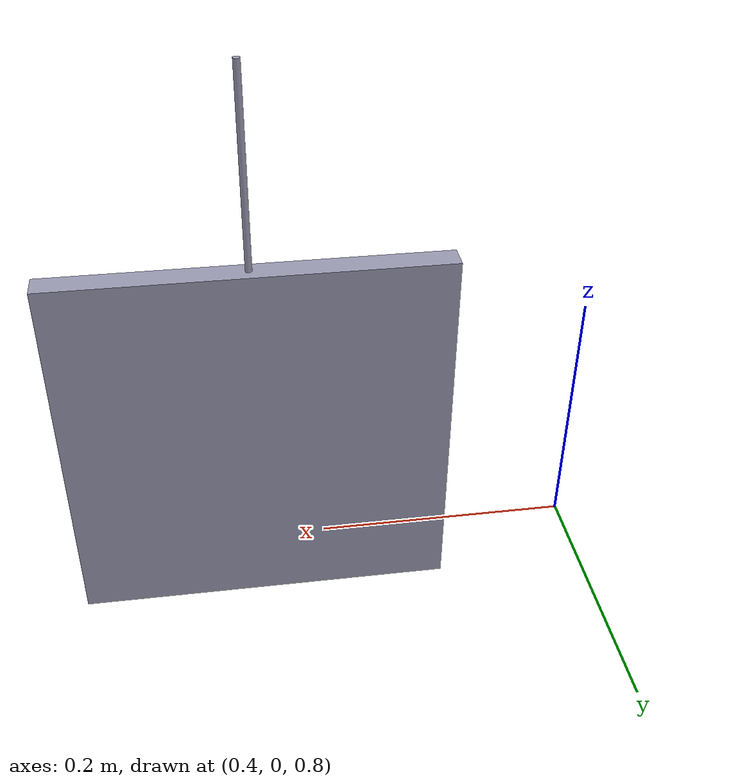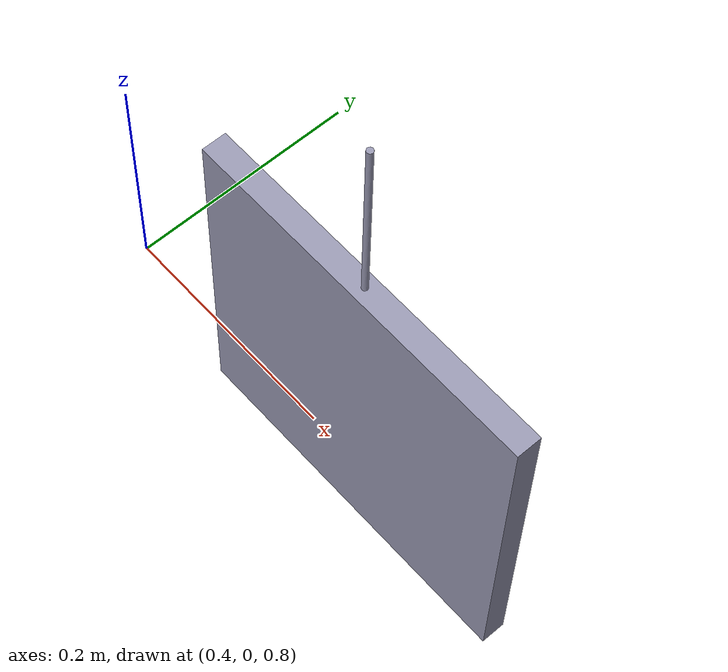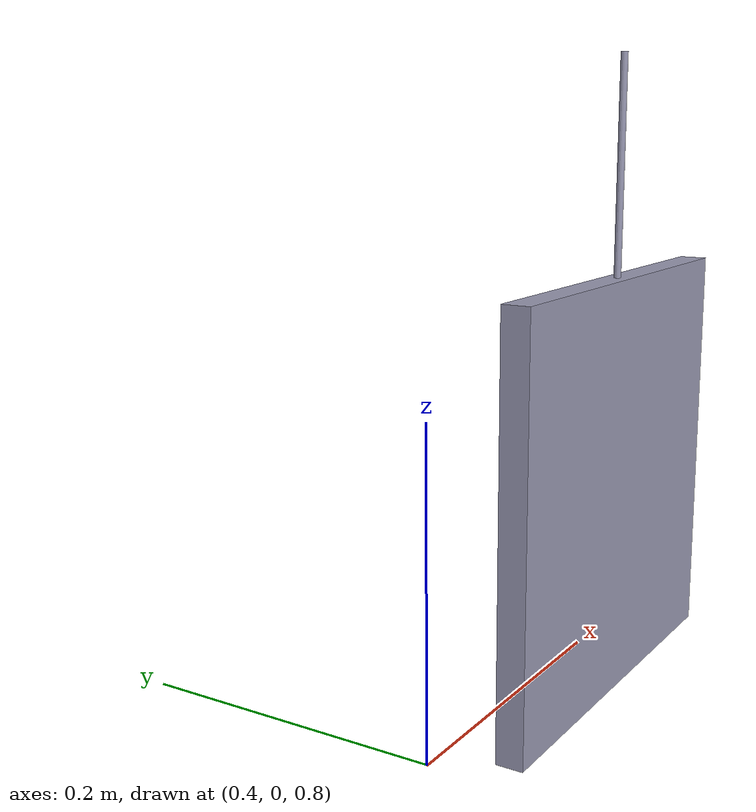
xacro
<?xml version="1.0"?>
<robot name="spray_object" xmlns:xacro="http://ros.org/wiki/xacro">
  <xacro:include filename="$(find cr5_spray_sim)/urdf/hanging_object.xacro"/>
  <xacro:arg name="object_type" default="flat_panel"/>
  <xacro:arg name="object_yaw_deg" default="0"/>
  <link name="world"/>
  <xacro:hanging_object parent_link="world"
    object_type="$(arg object_type)"
    yaw_deg="$(arg object_yaw_deg)"/>
</robot>

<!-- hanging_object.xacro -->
<!--
  Hanging Object Xacro
  吊挂工件：固定吊点 + 可控 yaw_joint + object_frame
  支持 flat_panel, cylinder_part, asymmetric_part 三种工件。
-->
<robot xmlns:xacro="http://ros.org/wiki/xacro">

  <xacro:macro name="hanging_object" params="
      parent_link:=world
      object_type:=flat_panel
      object_name:=spray_object
      x:=0.65 y:=0.0 z:=0.9
      yaw_deg:=0
      wire_length:=0.3
      wire_diameter:=0.005
  ">
    <xacro:property name="yaw_rad" value="${yaw_deg * 3.1415926535897931 / 180.0}"/>

    <material name="${object_name}_color">
      <color rgba="0.6 0.6 0.7 1"/>
    </material>

    <!-- Hanging point at gantry crossbeam -->
    <link name="${object_name}_hanging_point"/>
    <joint name="${object_name}_hanging_joint" type="fixed">
      <parent link="${parent_link}"/>
      <child link="${object_name}_hanging_point"/>
      <origin xyz="${x} ${y} ${z + wire_length}" rpy="0 0 0"/>
    </joint>

    <!-- Wire (visual only) -->
    <link name="${object_name}_wire">
      <visual>
        <origin xyz="0 0 ${-wire_length/2}" rpy="0 0 0"/>
        <geometry><cylinder radius="${wire_diameter/2}" length="${wire_length}"/></geometry>
        <material name="${object_name}_color"/>
      </visual>
      <inertial>
        <mass value="0.01"/>
        <inertia ixx="0.00001" ixy="0" ixz="0" iyy="0.00001" iyz="0" izz="0.00001"/>
      </inertial>
    </link>
    <joint name="${object_name}_wire_joint" type="fixed">
      <parent link="${object_name}_hanging_point"/>
      <child link="${object_name}_wire"/>
      <origin xyz="0 0 0" rpy="0 0 0"/>
    </joint>

    <!-- Yaw joint -->
    <joint name="${object_name}_yaw_joint" type="revolute">
      <parent link="${object_name}_wire"/>
      <child link="${object_name}_yaw_link"/>
      <origin xyz="0 0 ${-wire_length}" rpy="0 0 0"/>
      <axis xyz="0 0 1"/>
      <limit lower="-3.14" upper="3.14" effort="1.0" velocity="0.5"/>
      <dynamics damping="0.5" friction="0.1"/>
    </joint>
    <link name="${object_name}_yaw_link">
      <inertial>
        <mass value="0.1"/>
        <inertia ixx="0.001" ixy="0" ixz="0" iyy="0.001" iyz="0" izz="0.001"/>
      </inertial>
    </link>

    <!-- Object frame -->
    <link name="${object_name}_frame"/>
    <joint name="${object_name}_frame_joint" type="fixed">
      <parent link="${object_name}_yaw_link"/>
      <child link="${object_name}_frame"/>
      <origin xyz="0 0 0" rpy="0 0 ${yaw_rad}"/>
    </joint>

    <!-- Object body based on type -->
    <xacro:if value="${object_type == 'flat_panel'}">
      <link name="${object_name}_body">
        <visual>
          <origin xyz="0 0 0" rpy="0 0 0"/>
          <geometry><box size="0.30 0.02 0.30"/></geometry>
          <material name="${object_name}_color"/>
        </visual>
        <collision>
          <origin xyz="0 0 0" rpy="0 0 0"/>
          <geometry><box size="0.30 0.02 0.30"/></geometry>
        </collision>
        <inertial>
          <mass value="0.5"/>
          <inertia ixx="0.005" ixy="0" ixz="0" iyy="0.005" iyz="0" izz="0.005"/>
        </inertial>
      </link>
    </xacro:if>

    <xacro:if value="${object_type == 'cylinder_part'}">
      <link name="${object_name}_body">
        <visual>
          <origin xyz="0 0 0.175" rpy="0 0 0"/>
          <geometry><cylinder radius="0.10" length="0.35"/></geometry>
          <material name="${object_name}_color"/>
        </visual>
        <collision>
          <origin xyz="0 0 0.175" rpy="0 0 0"/>
          <geometry><cylinder radius="0.10" length="0.35"/></geometry>
        </collision>
        <inertial>
          <mass value="1.0"/>
          <inertia ixx="0.01" ixy="0" ixz="0" iyy="0.01" iyz="0" izz="0.005"/>
          <origin xyz="0 0 0.175" rpy="0 0 0"/>
        </inertial>
      </link>
    </xacro:if>

    <xacro:if value="${object_type == 'asymmetric_part'}">
      <link name="${object_name}_body">
        <visual>
          <origin xyz="0 0 0.1" rpy="0 0 0"/>
          <!-- Placeholder mesh; replace with actual model -->
          <geometry><box size="0.25 0.20 0.20"/></geometry>
          <material name="${object_name}_color"/>
        </visual>
        <collision>
          <origin xyz="0 0 0.1" rpy="0 0 0"/>
          <geometry><box size="0.25 0.20 0.20"/></geometry>
        </collision>
        <inertial>
          <mass value="0.8"/>
          <inertia ixx="0.005" ixy="0" ixz="0" iyy="0.005" iyz="0" izz="0.005"/>
          <origin xyz="0 0 0.1" rpy="0 0 0"/>
        </inertial>
      </link>
    </xacro:if>

    <joint name="${object_name}_body_joint" type="fixed">
      <parent link="${object_name}_frame"/>
      <child link="${object_name}_body"/>
    </joint>

    <gazebo>
      <plugin name="${object_name}_yaw_controller" filename="libgazebo_ros_control.so">
        <robotNamespace>/${object_name}</robotNamespace>
      </plugin>
    </gazebo>

  </xacro:macro>

</robot>
